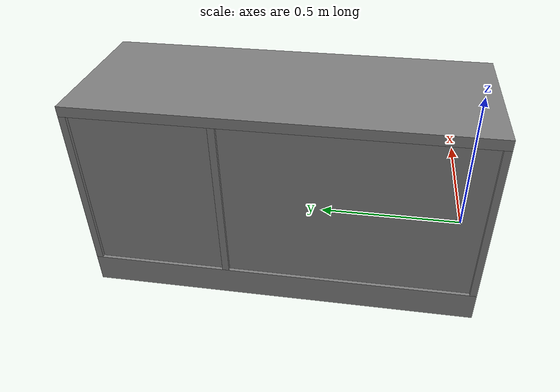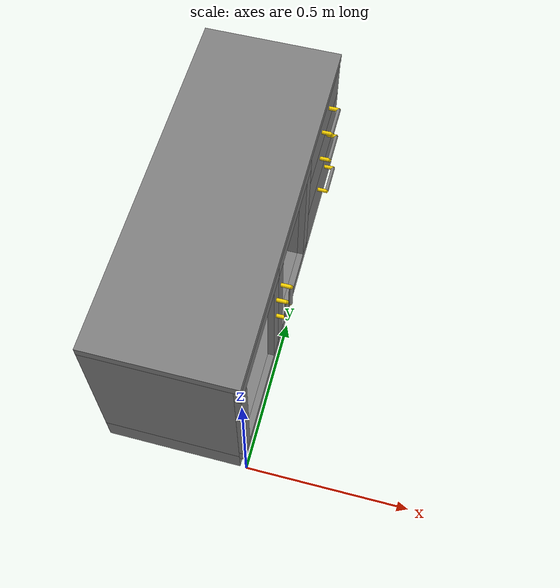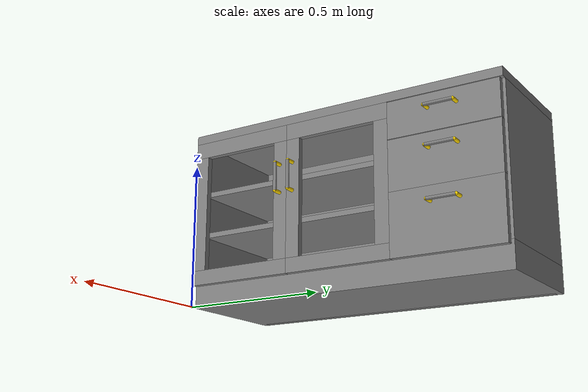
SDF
<?xml version="1.0" ?>
<sdf version="1.4">
    <model name='openable_living_sideboard'>
      <link name='body'>
        <pose>0.0 0.0 0.0 0 0 0</pose>
        <inertial>
          <mass>10.0</mass>
          <inertia>
            <ixx>1</ixx>
            <ixy>0</ixy>
            <ixz>0</ixz>
            <iyy>1</iyy>
            <iyz>0</iyz>
            <izz>1</izz>
          </inertia>
        </inertial>
        <visual name='left_board'>
          <pose>-0.23 0.01 0.3375 0 0 0</pose>
          <geometry>
            <box>
              <size>0.42 0.02 0.495</size>
            </box>
          </geometry>
          <material>
            <!-- base_materials/wood -->
            <name>wood</name>
            <ambient>1 1 1 1</ambient>
            <diffuse>0.5 0.5 0.5 1.0</diffuse>
            <specular>0 0 0 1.0</specular>
            <shininess>12.5</shininess>
            <pbr>
              <metal>
                <albedo_map>model://base_materials/wood/textures/light_wood.png</albedo_map>
                <max_anisotropy>16</max_anisotropy>
                <metalness>0</metalness>
              </metal>
            </pbr>
          </material>
        </visual>
        <collision name='collision_left_board'>
          <pose>-0.23 0.01 0.3375 0 0 0</pose>
          <geometry>
            <box>
              <size>0.42 0.02 0.495</size>
            </box>
          </geometry>
          <max_contacts>10</max_contacts>
          <surface>
            <bounce/>
            <friction>
              <ode/>
            </friction>
            <contact>
              <ode/>
            </contact>
          </surface>
        </collision>
        <visual name='back_board'>
          <pose>-0.42 0.575 0.2925 0 0 0</pose>
          <geometry>
            <box>
              <size>0.02 1.11 0.585</size>
            </box>
          </geometry>
          <material>
            <!-- base_materials/wood -->
            <name>wood</name>
            <ambient>1 1 1 1</ambient>
            <diffuse>0.5 0.5 0.5 1.0</diffuse>
            <specular>0 0 0 1.0</specular>
            <shininess>12.5</shininess>
            <pbr>
              <metal>
                <albedo_map>model://base_materials/wood/textures/light_wood.png</albedo_map>
                <max_anisotropy>16</max_anisotropy>
                <metalness>0</metalness>
              </metal>
            </pbr>
          </material>
        </visual>
        <collision name='collision_back_board'>
          <pose>-0.42 0.575 0.2925 0 0 0</pose>
          <geometry>
            <box>
              <size>0.02 1.11 0.585</size>
            </box>
          </geometry>
          <max_contacts>10</max_contacts>
          <surface>
            <bounce/>
            <friction>
              <ode/>
            </friction>
            <contact>
              <ode/>
            </contact>
          </surface>
        </collision>
        <visual name='right_board'>
          <pose>-0.23 1.14 0.3375 0 0 0</pose>
          <geometry>
            <box>
              <size>0.42 0.02 0.495</size>
            </box>
          </geometry>
          <material>
            <!-- base_materials/wood -->
            <name>wood</name>
            <ambient>1 1 1 1</ambient>
            <diffuse>0.5 0.5 0.5 1.0</diffuse>
            <specular>0 0 0 1.0</specular>
            <shininess>12.5</shininess>
            <pbr>
              <metal>
                <albedo_map>model://base_materials/wood/textures/light_wood.png</albedo_map>
                <max_anisotropy>16</max_anisotropy>
                <metalness>0</metalness>
              </metal>
            </pbr>
          </material>
        </visual>
        <collision name='collision_right_board'>
          <pose>-0.23 1.14 0.3375 0 0 0</pose>
          <geometry>
            <box>
              <size>0.42 0.02 0.495</size>
            </box>
          </geometry>
          <max_contacts>10</max_contacts>
          <surface>
            <bounce/>
            <friction>
              <ode/>
            </friction>
            <contact>
              <ode/>
            </contact>
          </surface>
        </collision>
        <visual name='center_vertical_board1'>
          <pose>-0.23 0.74 0.3375 0 0 0</pose>
          <geometry>
            <box>
              <size>0.42 0.02 0.495</size>
            </box>
          </geometry>
          <material>
            <!-- base_materials/wood -->
            <name>wood</name>
            <ambient>1 1 1 1</ambient>
            <diffuse>0.5 0.5 0.5 1.0</diffuse>
            <specular>0 0 0 1.0</specular>
            <shininess>12.5</shininess>
            <pbr>
              <metal>
                <albedo_map>model://base_materials/wood/textures/light_wood.png</albedo_map>
                <max_anisotropy>16</max_anisotropy>
                <metalness>0</metalness>
              </metal>
            </pbr>
          </material>
        </visual>
        <collision name='collision_center_vertical_board1'>
          <pose>-0.23 0.74 0.3375 0 0 0</pose>
          <geometry>
            <box>
              <size>0.42 0.02 0.495</size>
            </box>
          </geometry>
          <max_contacts>10</max_contacts>
          <surface>
            <bounce/>
            <friction>
              <ode/>
            </friction>
            <contact>
              <ode/>
            </contact>
          </surface>
        </collision>
        <visual name='top_board'>
          <pose>-0.22 0.575  0.6 0 0 0</pose>
          <geometry>
            <box>
              <size>0.44 1.15 0.03</size>
            </box>
          </geometry>
          <material>
            <!-- base_materials/wood -->
            <name>wood</name>
            <ambient>1 1 1 1</ambient>
            <diffuse>0.5 0.5 0.5 1.0</diffuse>
            <specular>0 0 0 1.0</specular>
            <shininess>12.5</shininess>
            <pbr>
              <metal>
                <albedo_map>model://base_materials/wood/textures/light_wood.png</albedo_map>
                <max_anisotropy>16</max_anisotropy>
                <metalness>0</metalness>
              </metal>
            </pbr>
          </material>
        </visual>
        <collision name='collision_top_board'>
          <pose>-0.22 0.575  0.6 0 0 0</pose>
          <geometry>
            <box>
              <size>0.44 1.15 0.03</size>
            </box>
          </geometry>
          <max_contacts>10</max_contacts>
          <surface>
            <bounce/>
            <friction>
              <ode/>
            </friction>
            <contact>
              <ode/>
            </contact>
          </surface>
        </collision>
        <visual name='bottom_board'>
          <pose>-0.23 0.575  0.045 0 0 0</pose>
          <geometry>
            <box>
              <size>0.42 1.15 0.09</size>
            </box>
          </geometry>
          <material>
            <!-- base_materials/wood -->
            <name>wood</name>
            <ambient>1 1 1 1</ambient>
            <diffuse>0.5 0.5 0.5 1.0</diffuse>
            <specular>0 0 0 1.0</specular>
            <shininess>12.5</shininess>
            <pbr>
              <metal>
                <albedo_map>model://base_materials/wood/textures/light_wood.png</albedo_map>
                <max_anisotropy>16</max_anisotropy>
                <metalness>0</metalness>
              </metal>
            </pbr>
          </material>
        </visual>
        <collision name='collision_bottom_board'>
          <pose>-0.23 0.575  0.045 0 0 0</pose>
          <geometry>
            <box>
              <size>0.42 1.15 0.09</size>
            </box>
          </geometry>
          <max_contacts>10</max_contacts>
          <surface>
            <bounce/>
            <friction>
              <ode/>
            </friction>
            <contact>
              <ode/>
            </contact>
          </surface>
        </collision>
        <visual name='1st_shelf'>
          <pose>-0.225 0.37 0.259 0 0 0</pose>
          <geometry>
            <box>
              <size>0.36 0.72 0.018</size>
            </box>
          </geometry>
          <material>
            <!-- base_materials/wood -->
            <name>wood</name>
            <ambient>1 1 1 1</ambient>
            <diffuse>0.5 0.5 0.5 1.0</diffuse>
            <specular>0 0 0 1.0</specular>
            <shininess>12.5</shininess>
            <pbr>
              <metal>
                <albedo_map>model://base_materials/wood/textures/light_wood.png</albedo_map>
                <max_anisotropy>16</max_anisotropy>
                <metalness>0</metalness>
              </metal>
            </pbr>
          </material>
        </visual>
        <collision name='collision_1st_shelf'>
          <pose>-0.225 0.37 0.259 0 0 0</pose>
          <geometry>
            <box>
              <size>0.36 0.72 0.018</size>
            </box>
          </geometry>
          <max_contacts>10</max_contacts>
          <surface>
            <bounce/>
            <friction>
              <ode/>
            </friction>
            <contact>
              <ode/>
            </contact>
          </surface>
        </collision>
        <visual name='2nd_shelf'>
          <pose>-0.225 0.37 0.407 0 0 0</pose>
          <geometry>
            <box>
              <size>0.36 0.72 0.018</size>
            </box>
          </geometry>
          <material>
            <!-- base_materials/wood -->
            <name>wood</name>
            <ambient>1 1 1 1</ambient>
            <diffuse>0.5 0.5 0.5 1.0</diffuse>
            <specular>0 0 0 1.0</specular>
            <shininess>12.5</shininess>
            <pbr>
              <metal>
                <albedo_map>model://base_materials/wood/textures/light_wood.png</albedo_map>
                <max_anisotropy>16</max_anisotropy>
                <metalness>0</metalness>
              </metal>
            </pbr>
          </material>
        </visual>
        <collision name='collision_2nd_shelf'>
          <pose>-0.225 0.37 0.407 0 0 0</pose>
          <geometry>
            <box>
              <size>0.36 0.72 0.018</size>
            </box>
          </geometry>
          <max_contacts>10</max_contacts>
          <surface>
            <bounce/>
            <friction>
              <ode/>
            </friction>
            <contact>
              <ode/>
            </contact>
          </surface>
        </collision>
        <visual name='2nd_drawer'>
          <pose>-0.2025 0.950 0.37 0 0 0</pose>
          <geometry>
            <box>
              <size>0.405 0.38 0.170</size>
            </box>
          </geometry>
          <material>
            <!-- base_materials/wood -->
            <name>wood</name>
            <ambient>1 1 1 1</ambient>
            <diffuse>0.5 0.5 0.5 1.0</diffuse>
            <specular>0 0 0 1.0</specular>
            <shininess>12.5</shininess>
            <pbr>
              <metal>
                <albedo_map>model://base_materials/wood/textures/light_wood.png</albedo_map>
                <max_anisotropy>16</max_anisotropy>
                <metalness>0</metalness>
              </metal>
            </pbr>
          </material>
        </visual>
        <collision name='collision_2nd_drawer'>
          <pose>-0.2025 0.950 0.37 0 0 0</pose>
          <geometry>
            <box>
              <size>0.405 0.38 0.170</size>
            </box>
          </geometry>
          <max_contacts>10</max_contacts>
          <surface>
            <bounce/>
            <friction>
              <ode/>
            </friction>
            <contact>
              <ode/>
            </contact>
          </surface>
        </collision>
        <visual name='2nd_drawer_handle_l1'>
          <pose>0.015 0.9015 0.405 0 1.5708 0</pose>
          <geometry>
            <cylinder>
              <radius>0.006</radius>
              <length>0.03</length>
            </cylinder>
          </geometry>
          <material>
            <!-- color:gold -->
            <ambient>1 0.84314 0 1</ambient>
            <diffuse>1 0.84314 0 1</diffuse>
            <specular>0.1 0.1 0.1 1</specular>
          </material>
        </visual>
        <collision name='collision_2nd_drawer_handle_l1'>
          <pose>0.015 0.9015 0.405 0 1.5708 0</pose>
          <geometry>
            <cylinder>
              <radius>0.006</radius>
              <length>0.03</length>
            </cylinder>
          </geometry>
          <max_contacts>10</max_contacts>
          <surface>
            <bounce/>
            <friction>
              <ode/>
            </friction>
            <contact>
              <ode/>
            </contact>
          </surface>
        </collision>
        <visual name='2nd_drawer_handle_l2'>
          <pose>0.03 0.9015 0.405 0 0 0</pose>
          <geometry>
            <sphere>
              <radius>0.006</radius>
            </sphere>
          </geometry>
          <material>
            <!-- color:gold -->
            <ambient>1 0.84314 0 1</ambient>
            <diffuse>1 0.84314 0 1</diffuse>
            <specular>0.1 0.1 0.1 1</specular>
          </material>
        </visual>
        <collision name='collision_2nd_drawer_handle_l2'>
          <pose>0.03 0.9015 0.405 0 0 0</pose>
          <geometry>
            <sphere>
              <radius>0.006</radius>
            </sphere>
          </geometry>
          <max_contacts>10</max_contacts>
          <surface>
            <bounce/>
            <friction>
              <ode/>
            </friction>
            <contact>
              <ode/>
            </contact>
          </surface>
        </collision>
        <visual name='2nd_drawer_handle_r1'>
          <pose>0.015 0.9985 0.405 0 1.5708 0</pose>
          <geometry>
            <cylinder>
              <radius>0.006</radius>
              <length>0.03</length>
            </cylinder>
          </geometry>
          <material>
            <!-- color:gold -->
            <ambient>1 0.84314 0 1</ambient>
            <diffuse>1 0.84314 0 1</diffuse>
            <specular>0.1 0.1 0.1 1</specular>
          </material>
        </visual>
        <collision name='collision_2nd_drawer_handle_r1'>
          <pose>0.015 0.9985 0.405 0 1.5708 0</pose>
          <geometry>
            <cylinder>
              <radius>0.006</radius>
              <length>0.03</length>
            </cylinder>
          </geometry>
          <max_contacts>10</max_contacts>
          <surface>
            <bounce/>
            <friction>
              <ode/>
            </friction>
            <contact>
              <ode/>
            </contact>
          </surface>
        </collision>
        <visual name='2nd_drawer_handle_r2'>
          <pose>0.03 0.9985 0.405 0 0 0</pose>
          <geometry>
            <sphere>
              <radius>0.006</radius>
            </sphere>
          </geometry>
          <material>
            <!-- color:gold -->
            <ambient>1 0.84314 0 1</ambient>
            <diffuse>1 0.84314 0 1</diffuse>
            <specular>0.1 0.1 0.1 1</specular>
          </material>
        </visual>
        <collision name='collision_2nd_drawer_handle_r2'>
          <pose>0.03 0.9985 0.405 0 0 0</pose>
          <geometry>
            <sphere>
              <radius>0.006</radius>
            </sphere>
          </geometry>
          <max_contacts>10</max_contacts>
          <surface>
            <bounce/>
            <friction>
              <ode/>
            </friction>
            <contact>
              <ode/>
            </contact>
          </surface>
        </collision>
        <visual name='2nd_drawer_handle_center'>
          <pose>0.03 0.950 0.405 1.5708 0 0</pose>
          <geometry>
            <cylinder>
              <radius>0.006</radius>
              <length>0.097</length>
            </cylinder>
          </geometry>
          <material>
            <!-- base_materials/wood -->
            <name>wood</name>
            <ambient>1 1 1 1</ambient>
            <diffuse>0.5 0.5 0.5 1.0</diffuse>
            <specular>0 0 0 1.0</specular>
            <shininess>12.5</shininess>
            <pbr>
              <metal>
                <albedo_map>model://base_materials/wood/textures/light_wood.png</albedo_map>
                <max_anisotropy>16</max_anisotropy>
                <metalness>0</metalness>
              </metal>
            </pbr>
          </material>
        </visual>
        <collision name='collision_2nd_drawer_handle_center'>
          <pose>0.03 0.950 0.405 1.5708 0 0</pose>
          <geometry>
            <cylinder>
              <radius>0.006</radius>
              <length>0.097</length>
            </cylinder>
          </geometry>
          <max_contacts>10</max_contacts>
          <surface>
            <bounce/>
            <friction>
              <ode/>
            </friction>
            <contact>
              <ode/>
            </contact>
          </surface>
        </collision>
        <visual name='3rd_drawer'>
          <pose>-0.2025 0.950 0.18 0 0 0</pose>
          <geometry>
            <box>
              <size>0.405 0.38 0.21</size>
            </box>
          </geometry>
          <material>
            <!-- base_materials/wood -->
            <name>wood</name>
            <ambient>1 1 1 1</ambient>
            <diffuse>0.5 0.5 0.5 1.0</diffuse>
            <specular>0 0 0 1.0</specular>
            <shininess>12.5</shininess>
            <pbr>
              <metal>
                <albedo_map>model://base_materials/wood/textures/light_wood.png</albedo_map>
                <max_anisotropy>16</max_anisotropy>
                <metalness>0</metalness>
              </metal>
            </pbr>
          </material>
        </visual>
        <collision name='collision_3rd_drawer'>
          <pose>-0.2025 0.950 0.18 0 0 0</pose>
          <geometry>
            <box>
              <size>0.405 0.38 0.21</size>
            </box>
          </geometry>
          <max_contacts>10</max_contacts>
          <surface>
            <bounce/>
            <friction>
              <ode/>
            </friction>
            <contact>
              <ode/>
            </contact>
          </surface>
        </collision>
        <visual name='3rd_drawer_handle_l1'>
          <pose>0.015 0.9015 0.235 0 1.5708 0</pose>
          <geometry>
            <cylinder>
              <radius>0.006</radius>
              <length>0.03</length>
            </cylinder>
          </geometry>
          <material>
            <!-- color:gold -->
            <ambient>1 0.84314 0 1</ambient>
            <diffuse>1 0.84314 0 1</diffuse>
            <specular>0.1 0.1 0.1 1</specular>
          </material>
        </visual>
        <collision name='collision_3rd_drawer_handle_l1'>
          <pose>0.015 0.9015 0.235 0 1.5708 0</pose>
          <geometry>
            <cylinder>
              <radius>0.006</radius>
              <length>0.03</length>
            </cylinder>
          </geometry>
          <max_contacts>10</max_contacts>
          <surface>
            <bounce/>
            <friction>
              <ode/>
            </friction>
            <contact>
              <ode/>
            </contact>
          </surface>
        </collision>
        <visual name='3rd_drawer_handle_l2'>
          <pose>0.03 0.9015 0.235 0 0 0</pose>
          <geometry>
            <sphere>
              <radius>0.006</radius>
            </sphere>
          </geometry>
          <material>
            <!-- color:gold -->
            <ambient>1 0.84314 0 1</ambient>
            <diffuse>1 0.84314 0 1</diffuse>
            <specular>0.1 0.1 0.1 1</specular>
          </material>
        </visual>
        <collision name='collision_3rd_drawer_handle_l2'>
          <pose>0.03 0.9015 0.235 0 0 0</pose>
          <geometry>
            <sphere>
              <radius>0.006</radius>
            </sphere>
          </geometry>
          <max_contacts>10</max_contacts>
          <surface>
            <bounce/>
            <friction>
              <ode/>
            </friction>
            <contact>
              <ode/>
            </contact>
          </surface>
        </collision>
        <visual name='3rd_drawer_handle_r1'>
          <pose>0.015 0.9985 0.235 0 1.5708 0</pose>
          <geometry>
            <cylinder>
              <radius>0.006</radius>
              <length>0.03</length>
            </cylinder>
          </geometry>
          <material>
            <!-- color:gold -->
            <ambient>1 0.84314 0 1</ambient>
            <diffuse>1 0.84314 0 1</diffuse>
            <specular>0.1 0.1 0.1 1</specular>
          </material>
        </visual>
        <collision name='collision_3rd_drawer_handle_r1'>
          <pose>0.015 0.9985 0.235 0 1.5708 0</pose>
          <geometry>
            <cylinder>
              <radius>0.006</radius>
              <length>0.03</length>
            </cylinder>
          </geometry>
          <max_contacts>10</max_contacts>
          <surface>
            <bounce/>
            <friction>
              <ode/>
            </friction>
            <contact>
              <ode/>
            </contact>
          </surface>
        </collision>
        <visual name='3rd_drawer_handle_r2'>
          <pose>0.03 0.9985 0.235 0 0 0</pose>
          <geometry>
            <sphere>
              <radius>0.006</radius>
            </sphere>
          </geometry>
          <material>
            <!-- color:gold -->
            <ambient>1 0.84314 0 1</ambient>
            <diffuse>1 0.84314 0 1</diffuse>
            <specular>0.1 0.1 0.1 1</specular>
          </material>
        </visual>
        <collision name='collision_3rd_drawer_handle_r2'>
          <pose>0.03 0.9985 0.235 0 0 0</pose>
          <geometry>
            <sphere>
              <radius>0.006</radius>
            </sphere>
          </geometry>
          <max_contacts>10</max_contacts>
          <surface>
            <bounce/>
            <friction>
              <ode/>
            </friction>
            <contact>
              <ode/>
            </contact>
          </surface>
        </collision>
        <visual name='3rd_drawer_handle_center'>
          <pose>0.03 0.950 0.235 1.5708 0 0</pose>
          <geometry>
            <cylinder>
              <radius>0.006</radius>
              <length>0.097</length>
            </cylinder>
          </geometry>
          <material>
            <!-- base_materials/wood -->
            <name>wood</name>
            <ambient>1 1 1 1</ambient>
            <diffuse>0.5 0.5 0.5 1.0</diffuse>
            <specular>0 0 0 1.0</specular>
            <shininess>12.5</shininess>
            <pbr>
              <metal>
                <albedo_map>model://base_materials/wood/textures/light_wood.png</albedo_map>
                <max_anisotropy>16</max_anisotropy>
                <metalness>0</metalness>
              </metal>
            </pbr>
          </material>
        </visual>
        <collision name='collision_3rd_drawer_handle_center'>
          <pose>0.03 0.950 0.235 1.5708 0 0</pose>
          <geometry>
            <cylinder>
              <radius>0.006</radius>
              <length>0.097</length>
            </cylinder>
          </geometry>
          <max_contacts>10</max_contacts>
          <surface>
            <bounce/>
            <friction>
              <ode/>
            </friction>
            <contact>
              <ode/>
            </contact>
          </surface>
        </collision>
      </link>

      <link name='right_door'>
        <visual name='right_door_left_frame'>
          <pose>-0.01 0.405 0.3275 0 0 0</pose>
          <geometry>
            <box>
              <size>0.02 0.05 0.405</size>
            </box>
          </geometry>
          <material>
            <!-- base_materials/wood -->
            <name>wood</name>
            <ambient>1 1 1 1</ambient>
            <diffuse>0.5 0.5 0.5 1.0</diffuse>
            <specular>0 0 0 1.0</specular>
            <shininess>12.5</shininess>
            <pbr>
              <metal>
                <albedo_map>model://base_materials/wood/textures/light_wood.png</albedo_map>
                <max_anisotropy>16</max_anisotropy>
                <metalness>0</metalness>
              </metal>
            </pbr>
          </material>
        </visual>
        <collision name='collision_right_door_left_frame'>
          <pose>-0.01 0.405 0.3275 0 0 0</pose>
          <geometry>
            <box>
              <size>0.02 0.05 0.405</size>
            </box>
          </geometry>
          <max_contacts>10</max_contacts>
          <surface>
            <bounce/>
            <friction>
              <ode/>
            </friction>
            <contact>
              <ode/>
            </contact>
          </surface>
        </collision>
        <visual name='right_door_right_frame'>
          <pose>-0.01 0.735 0.3275 0 0 0</pose>
          <geometry>
            <box>
              <size>0.02 0.05 0.405</size>
            </box>
          </geometry>
          <material>
            <!-- base_materials/wood -->
            <name>wood</name>
            <ambient>1 1 1 1</ambient>
            <diffuse>0.5 0.5 0.5 1.0</diffuse>
            <specular>0 0 0 1.0</specular>
            <shininess>12.5</shininess>
            <pbr>
              <metal>
                <albedo_map>model://base_materials/wood/textures/light_wood.png</albedo_map>
                <max_anisotropy>16</max_anisotropy>
                <metalness>0</metalness>
              </metal>
            </pbr>
          </material>
        </visual>
        <collision name='collision_right_door_right_frame'>
          <pose>-0.01 0.735 0.3275 0 0 0</pose>
          <geometry>
            <box>
              <size>0.02 0.05 0.405</size>
            </box>
          </geometry>
          <max_contacts>10</max_contacts>
          <surface>
            <bounce/>
            <friction>
              <ode/>
            </friction>
            <contact>
              <ode/>
            </contact>
          </surface>
        </collision>
        <visual name='right_door_top_frame'>
          <pose>-0.01 0.57 0.5575 0 0 0</pose>
          <geometry>
            <box>
              <size>0.02 0.38 0.055</size>
            </box>
          </geometry>
          <material>
            <!-- base_materials/wood -->
            <name>wood</name>
            <ambient>1 1 1 1</ambient>
            <diffuse>0.5 0.5 0.5 1.0</diffuse>
            <specular>0 0 0 1.0</specular>
            <shininess>12.5</shininess>
            <pbr>
              <metal>
                <albedo_map>model://base_materials/wood/textures/light_wood.png</albedo_map>
                <max_anisotropy>16</max_anisotropy>
                <metalness>0</metalness>
              </metal>
            </pbr>
          </material>
        </visual>
        <collision name='collision_right_door_top_frame'>
          <pose>-0.01 0.57 0.5575 0 0 0</pose>
          <geometry>
            <box>
              <size>0.02 0.38 0.055</size>
            </box>
          </geometry>
          <max_contacts>10</max_contacts>
          <surface>
            <bounce/>
            <friction>
              <ode/>
            </friction>
            <contact>
              <ode/>
            </contact>
          </surface>
        </collision>
        <visual name='right_door_bottom_frame'>
          <pose>-0.01 0.57 0.1 0 0 0</pose>
          <geometry>
            <box>
              <size>0.02 0.38 0.05</size>
            </box>
          </geometry>
          <material>
            <!-- base_materials/wood -->
            <name>wood</name>
            <ambient>1 1 1 1</ambient>
            <diffuse>0.5 0.5 0.5 1.0</diffuse>
            <specular>0 0 0 1.0</specular>
            <shininess>12.5</shininess>
            <pbr>
              <metal>
                <albedo_map>model://base_materials/wood/textures/light_wood.png</albedo_map>
                <max_anisotropy>16</max_anisotropy>
                <metalness>0</metalness>
              </metal>
            </pbr>
          </material>
        </visual>
        <collision name='collision_right_door_bottom_frame'>
          <pose>-0.01 0.57 0.1 0 0 0</pose>
          <geometry>
            <box>
              <size>0.02 0.38 0.05</size>
            </box>
          </geometry>
          <max_contacts>10</max_contacts>
          <surface>
            <bounce/>
            <friction>
              <ode/>
            </friction>
            <contact>
              <ode/>
            </contact>
          </surface>
        </collision>
        <visual name='right_door_handle_top1'>
          <pose>0.015 0.405 0.4475 0 1.5708 0</pose>
          <geometry>
            <cylinder>
              <radius>0.006</radius>
              <length>0.03</length>
            </cylinder>
          </geometry>
          <material>
            <!-- color:gold -->
            <ambient>1 0.84314 0 1</ambient>
            <diffuse>1 0.84314 0 1</diffuse>
            <specular>0.1 0.1 0.1 1</specular>
          </material>
        </visual>
        <collision name='collision_right_door_handle_top1'>
          <pose>0.015 0.405 0.4475 0 1.5708 0</pose>
          <geometry>
            <cylinder>
              <radius>0.006</radius>
              <length>0.03</length>
            </cylinder>
          </geometry>
          <max_contacts>10</max_contacts>
          <surface>
            <bounce/>
            <friction>
              <ode/>
            </friction>
            <contact>
              <ode/>
            </contact>
          </surface>
        </collision>
        <visual name='right_door_handle_top2'>
          <pose>0.03 0.405 0.4475 0 0 0</pose>
          <geometry>
            <sphere>
              <radius>0.006</radius>
            </sphere>
          </geometry>
          <material>
            <!-- color:gold -->
            <ambient>1 0.84314 0 1</ambient>
            <diffuse>1 0.84314 0 1</diffuse>
            <specular>0.1 0.1 0.1 1</specular>
          </material>
        </visual>
        <collision name='collision_right_door_handle_top2'>
          <pose>0.03 0.405 0.4475 0 0 0</pose>
          <geometry>
            <sphere>
              <radius>0.006</radius>
            </sphere>
          </geometry>
          <max_contacts>10</max_contacts>
          <surface>
            <bounce/>
            <friction>
              <ode/>
            </friction>
            <contact>
              <ode/>
            </contact>
          </surface>
        </collision>
        <visual name='right_door_handle_bottom1'>
          <pose>0.015 0.405 0.3505 0 1.5708 0</pose>
          <geometry>
            <cylinder>
              <radius>0.006</radius>
              <length>0.03</length>
            </cylinder>
          </geometry>
          <material>
            <!-- color:gold -->
            <ambient>1 0.84314 0 1</ambient>
            <diffuse>1 0.84314 0 1</diffuse>
            <specular>0.1 0.1 0.1 1</specular>
          </material>
        </visual>
        <collision name='collision_right_door_handle_bottom1'>
          <pose>0.015 0.405 0.3505 0 1.5708 0</pose>
          <geometry>
            <cylinder>
              <radius>0.006</radius>
              <length>0.03</length>
            </cylinder>
          </geometry>
          <max_contacts>10</max_contacts>
          <surface>
            <bounce/>
            <friction>
              <ode/>
            </friction>
            <contact>
              <ode/>
            </contact>
          </surface>
        </collision>
        <visual name='right_door_handle_bottom2'>
          <pose>0.03 0.405 0.3505 0 0 0</pose>
          <geometry>
            <sphere>
              <radius>0.006</radius>
            </sphere>
          </geometry>
          <material>
            <!-- color:gold -->
            <ambient>1 0.84314 0 1</ambient>
            <diffuse>1 0.84314 0 1</diffuse>
            <specular>0.1 0.1 0.1 1</specular>
          </material>
        </visual>
        <collision name='collision_right_door_handle_bottom2'>
          <pose>0.03 0.405 0.3505 0 0 0</pose>
          <geometry>
            <sphere>
              <radius>0.006</radius>
            </sphere>
          </geometry>
          <max_contacts>10</max_contacts>
          <surface>
            <bounce/>
            <friction>
              <ode/>
            </friction>
            <contact>
              <ode/>
            </contact>
          </surface>
        </collision>
        <visual name='right_door_handle_center'>
          <pose>0.03 0.405 0.3990 0 0 0</pose>
          <geometry>
            <cylinder>
              <radius>0.006</radius>
              <length>0.097</length>
            </cylinder>
          </geometry>
          <material>
            <!-- base_materials/wood -->
            <name>wood</name>
            <ambient>1 1 1 1</ambient>
            <diffuse>0.5 0.5 0.5 1.0</diffuse>
            <specular>0 0 0 1.0</specular>
            <shininess>12.5</shininess>
            <pbr>
              <metal>
                <albedo_map>model://base_materials/wood/textures/light_wood.png</albedo_map>
                <max_anisotropy>16</max_anisotropy>
                <metalness>0</metalness>
              </metal>
            </pbr>
          </material>
        </visual>
        <collision name='collision_right_door_handle_center'>
          <pose>0.03 0.400 0.3990 0 0 0</pose>
          <geometry>
            <cylinder>
              <radius>0.006</radius>
              <length>0.097</length>
            </cylinder>
          </geometry>
          <max_contacts>10</max_contacts>
          <surface>
            <bounce/>
            <friction>
              <ode/>
            </friction>
            <contact>
              <ode/>
            </contact>
          </surface>
        </collision>
        <velocity_decay>
          <linear>0</linear>
          <angular>0</angular>
        </velocity_decay>
        <self_collide>0</self_collide>
        <kinematic>0</kinematic>
        <gravity>1</gravity>
      </link>

      <link name='left_door'>
        <visual name='left_door_left_frame'>
          <pose>-0.01 0.025 0.3275 0 0 0</pose>
          <geometry>
            <box>
              <size>0.02 0.05 0.405</size>
            </box>
          </geometry>
          <material>
            <!-- base_materials/wood -->
            <name>wood</name>
            <ambient>1 1 1 1</ambient>
            <diffuse>0.5 0.5 0.5 1.0</diffuse>
            <specular>0 0 0 1.0</specular>
            <shininess>12.5</shininess>
            <pbr>
              <metal>
                <albedo_map>model://base_materials/wood/textures/light_wood.png</albedo_map>
                <max_anisotropy>16</max_anisotropy>
                <metalness>0</metalness>
              </metal>
            </pbr>
          </material>
        </visual>
        <collision name='collision_left_door_left_frame'>
          <pose>-0.01 0.025 0.3275 0 0 0</pose>
          <geometry>
            <box>
              <size>0.02 0.05 0.405</size>
            </box>
          </geometry>
          <max_contacts>10</max_contacts>
          <surface>
            <bounce/>
            <friction>
              <ode/>
            </friction>
            <contact>
              <ode/>
            </contact>
          </surface>
        </collision>
        <visual name='left_door_right_frame'>
          <pose>-0.01 0.355 0.3275 0 0 0</pose>
          <geometry>
            <box>
              <size>0.02 0.05 0.405</size>
            </box>
          </geometry>
          <material>
            <!-- base_materials/wood -->
            <name>wood</name>
            <ambient>1 1 1 1</ambient>
            <diffuse>0.5 0.5 0.5 1.0</diffuse>
            <specular>0 0 0 1.0</specular>
            <shininess>12.5</shininess>
            <pbr>
              <metal>
                <albedo_map>model://base_materials/wood/textures/light_wood.png</albedo_map>
                <max_anisotropy>16</max_anisotropy>
                <metalness>0</metalness>
              </metal>
            </pbr>
          </material>
        </visual>
        <collision name='collision_left_door_right_frame'>
          <pose>-0.01 0.355 0.3275 0 0 0</pose>
          <geometry>
            <box>
              <size>0.02 0.05 0.405</size>
            </box>
          </geometry>
          <max_contacts>10</max_contacts>
          <surface>
            <bounce/>
            <friction>
              <ode/>
            </friction>
            <contact>
              <ode/>
            </contact>
          </surface>
        </collision>
        <visual name='left_door_handle_top1'>
          <pose>0.015 0.355 0.4475 0 1.5708 0</pose>
          <geometry>
            <cylinder>
              <radius>0.006</radius>
              <length>0.03</length>
            </cylinder>
          </geometry>
          <material>
            <!-- color:gold -->
            <ambient>1 0.84314 0 1</ambient>
            <diffuse>1 0.84314 0 1</diffuse>
            <specular>0.1 0.1 0.1 1</specular>
          </material>
        </visual>
        <collision name='collision_left_door_handle_top1'>
          <pose>0.015 0.355 0.4475 0 1.5708 0</pose>
          <geometry>
            <cylinder>
              <radius>0.006</radius>
              <length>0.03</length>
            </cylinder>
          </geometry>
          <max_contacts>10</max_contacts>
          <surface>
            <bounce/>
            <friction>
              <ode/>
            </friction>
            <contact>
              <ode/>
            </contact>
          </surface>
        </collision>
        <visual name='left_door_handle_top2'>
          <pose>0.03 0.355 0.4475 0 0 0</pose>
          <geometry>
            <sphere>
              <radius>0.006</radius>
            </sphere>
          </geometry>
          <material>
            <!-- color:gold -->
            <ambient>1 0.84314 0 1</ambient>
            <diffuse>1 0.84314 0 1</diffuse>
            <specular>0.1 0.1 0.1 1</specular>
          </material>
        </visual>
        <collision name='collision_left_door_handle_top2'>
          <pose>0.03 0.355 0.4475 0 0 0</pose>
          <geometry>
            <sphere>
              <radius>0.006</radius>
            </sphere>
          </geometry>
          <max_contacts>10</max_contacts>
          <surface>
            <bounce/>
            <friction>
              <ode/>
            </friction>
            <contact>
              <ode/>
            </contact>
          </surface>
        </collision>
        <visual name='left_door_handle_bottom1'>
          <pose>0.015 0.355 0.3505 0 1.5708 0</pose>
          <geometry>
            <cylinder>
              <radius>0.006</radius>
              <length>0.03</length>
            </cylinder>
          </geometry>
          <material>
            <!-- color:gold -->
            <ambient>1 0.84314 0 1</ambient>
            <diffuse>1 0.84314 0 1</diffuse>
            <specular>0.1 0.1 0.1 1</specular>
          </material>
        </visual>
        <collision name='collision_left_door_handle_bottom1'>
          <pose>0.015 0.355 0.3505 0 1.5708 0</pose>
          <geometry>
            <cylinder>
              <radius>0.006</radius>
              <length>0.03</length>
            </cylinder>
          </geometry>
          <max_contacts>10</max_contacts>
          <surface>
            <bounce/>
            <friction>
              <ode/>
            </friction>
            <contact>
              <ode/>
            </contact>
          </surface>
        </collision>
        <visual name='left_door_handle_bottom2'>
          <pose>0.03 0.355 0.3505 0 0 0</pose>
          <geometry>
            <sphere>
              <radius>0.006</radius>
            </sphere>
          </geometry>
          <material>
            <!-- color:gold -->
            <ambient>1 0.84314 0 1</ambient>
            <diffuse>1 0.84314 0 1</diffuse>
            <specular>0.1 0.1 0.1 1</specular>
          </material>
        </visual>
        <collision name='collision_left_door_handle_bottom2'>
          <pose>0.03 0.355 0.3505 0 0 0</pose>
          <geometry>
            <sphere>
              <radius>0.006</radius>
            </sphere>
          </geometry>
          <max_contacts>10</max_contacts>
          <surface>
            <bounce/>
            <friction>
              <ode/>
            </friction>
            <contact>
              <ode/>
            </contact>
          </surface>
        </collision>
        <visual name='left_door_handle_center'>
          <pose>0.03 0.355 0.3990 0 0 0</pose>
          <geometry>
            <cylinder>
              <radius>0.006</radius>
              <length>0.097</length>
            </cylinder>
          </geometry>
          <material>
            <!-- base_materials/wood -->
            <name>wood</name>
            <ambient>1 1 1 1</ambient>
            <diffuse>0.5 0.5 0.5 1.0</diffuse>
            <specular>0 0 0 1.0</specular>
            <shininess>12.5</shininess>
            <pbr>
              <metal>
                <albedo_map>model://base_materials/wood/textures/light_wood.png</albedo_map>
                <max_anisotropy>16</max_anisotropy>
                <metalness>0</metalness>
              </metal>
            </pbr>
          </material>
        </visual>
        <collision name='collision_left_door_handle_center'>
          <pose>0.03 0.355 0.3990 0 0 0</pose>
          <geometry>
            <cylinder>
              <radius>0.006</radius>
              <length>0.097</length>
            </cylinder>
          </geometry>
          <max_contacts>10</max_contacts>
          <surface>
            <bounce/>
            <friction>
              <ode/>
            </friction>
            <contact>
              <ode/>
            </contact>
          </surface>
        </collision>
        <visual name='left_door_top_frame'>
          <pose>-0.01 0.19 0.5575 0 0 0</pose>
          <geometry>
            <box>
              <size>0.02 0.38 0.055</size>
            </box>
          </geometry>
          <material>
            <!-- base_materials/wood -->
            <name>wood</name>
            <ambient>1 1 1 1</ambient>
            <diffuse>0.5 0.5 0.5 1.0</diffuse>
            <specular>0 0 0 1.0</specular>
            <shininess>12.5</shininess>
            <pbr>
              <metal>
                <albedo_map>model://base_materials/wood/textures/light_wood.png</albedo_map>
                <max_anisotropy>16</max_anisotropy>
                <metalness>0</metalness>
              </metal>
            </pbr>
          </material>
        </visual>
        <collision name='collision_left_door_top_frame'>
          <pose>-0.01 0.19 0.5575 0 0 0</pose>
          <geometry>
            <box>
              <size>0.02 0.38 0.055</size>
            </box>
          </geometry>
          <max_contacts>10</max_contacts>
          <surface>
            <bounce/>
            <friction>
              <ode/>
            </friction>
            <contact>
              <ode/>
            </contact>
          </surface>
        </collision>
        <visual name='left_door_bottom_frame'>
          <pose>-0.01 0.19 0.1 0 0 0</pose>
          <geometry>
            <box>
              <size>0.02 0.38 0.05</size>
            </box>
          </geometry>
          <material>
            <!-- base_materials/wood -->
            <name>wood</name>
            <ambient>1 1 1 1</ambient>
            <diffuse>0.5 0.5 0.5 1.0</diffuse>
            <specular>0 0 0 1.0</specular>
            <shininess>12.5</shininess>
            <pbr>
              <metal>
                <albedo_map>model://base_materials/wood/textures/light_wood.png</albedo_map>
                <max_anisotropy>16</max_anisotropy>
                <metalness>0</metalness>
              </metal>
            </pbr>
          </material>
        </visual>
        <collision name='collision_left_door_bottom_frame'>
          <pose>-0.01 0.19 0.1 0 0 0</pose>
          <geometry>
            <box>
              <size>0.02 0.38 0.05</size>
            </box>
          </geometry>
          <max_contacts>10</max_contacts>
          <surface>
            <bounce/>
            <friction>
              <ode/>
            </friction>
            <contact>
              <ode/>
            </contact>
          </surface>
        </collision>
      </link>

      <link name='1st_drawer'>
        <visual name='1st_drawer_bottom'>
          <pose>-0.2025 0.945 0.48 0 0 0</pose>
          <geometry>
            <box>
              <size>0.38 0.35 0.02</size>
            </box>
          </geometry>
          <material>
            <!-- base_materials/wood -->
            <name>wood</name>
            <ambient>1 1 1 1</ambient>
            <diffuse>0.5 0.5 0.5 1.0</diffuse>
            <specular>0 0 0 1.0</specular>
            <shininess>12.5</shininess>
            <pbr>
              <metal>
                <albedo_map>model://base_materials/wood/textures/light_wood.png</albedo_map>
                <max_anisotropy>16</max_anisotropy>
                <metalness>0</metalness>
              </metal>
            </pbr>
          </material>
        </visual>
        <collision name='collision_1st_drawer_bottom'>
          <pose>-0.2025 0.945 0.48 0 0 0</pose>
          <geometry>
            <box>
              <size>0.38 0.35 0.02</size>
            </box>
          </geometry>
          <max_contacts>10</max_contacts>
          <surface>
            <bounce/>
            <friction>
              <ode/>
            </friction>
            <contact>
              <ode/>
            </contact>
          </surface>
        </collision>
        <visual name='1st_drawer_left'>
          <pose>-0.2025 0.775 0.510 0 0 0</pose>
          <geometry>
            <box>
              <size>0.400 0.02 0.10</size>
            </box>
          </geometry>
          <material>
            <!-- base_materials/wood -->
            <name>wood</name>
            <ambient>1 1 1 1</ambient>
            <diffuse>0.5 0.5 0.5 1.0</diffuse>
            <specular>0 0 0 1.0</specular>
            <shininess>12.5</shininess>
            <pbr>
              <metal>
                <albedo_map>model://base_materials/wood/textures/light_wood.png</albedo_map>
                <max_anisotropy>16</max_anisotropy>
                <metalness>0</metalness>
              </metal>
            </pbr>
          </material>
        </visual>
        <collision name='collision_1st_drawer_left'>
          <pose>-0.2025 0.775 0.510 0 0 0</pose>
          <geometry>
            <box>
              <size>0.400 0.02 0.10</size>
            </box>
          </geometry>
          <max_contacts>10</max_contacts>
          <surface>
            <bounce/>
            <friction>
              <ode/>
            </friction>
            <contact>
              <ode/>
            </contact>
          </surface>
        </collision>
        <visual name='1st_drawer_right'>
          <pose>-0.2025 1.12 0.510 0 0 0</pose>
          <geometry>
            <box>
              <size>0.400 0.02 0.10</size>
            </box>
          </geometry>
          <material>
            <!-- base_materials/wood -->
            <name>wood</name>
            <ambient>1 1 1 1</ambient>
            <diffuse>0.5 0.5 0.5 1.0</diffuse>
            <specular>0 0 0 1.0</specular>
            <shininess>12.5</shininess>
            <pbr>
              <metal>
                <albedo_map>model://base_materials/wood/textures/light_wood.png</albedo_map>
                <max_anisotropy>16</max_anisotropy>
                <metalness>0</metalness>
              </metal>
            </pbr>
          </material>
        </visual>
        <collision name='collision_1st_drawer_right'>
          <pose>-0.2025 1.12 0.510 0 0 0</pose>
          <geometry>
            <box>
              <size>0.400 0.02 0.10</size>
            </box>
          </geometry>
          <max_contacts>10</max_contacts>
          <surface>
            <bounce/>
            <friction>
              <ode/>
            </friction>
            <contact>
              <ode/>
            </contact>
          </surface>
        </collision>
        <visual name='1st_drawer_front'>
          <pose>-0.01 0.950 0.520 0 0 0</pose>
          <geometry>
            <box>
              <size>0.02 0.38 0.125</size>
            </box>
          </geometry>
          <material>
            <!-- base_materials/wood -->
            <name>wood</name>
            <ambient>1 1 1 1</ambient>
            <diffuse>0.5 0.5 0.5 1.0</diffuse>
            <specular>0 0 0 1.0</specular>
            <shininess>12.5</shininess>
            <pbr>
              <metal>
                <albedo_map>model://base_materials/wood/textures/light_wood.png</albedo_map>
                <max_anisotropy>16</max_anisotropy>
                <metalness>0</metalness>
              </metal>
            </pbr>
          </material>
        </visual>
        <collision name='collision_1st_drawer_front'>
          <pose>-0.01 0.950 0.520 0 0 0</pose>
          <geometry>
            <box>
              <size>0.02 0.38 0.125</size>
            </box>
          </geometry>
          <max_contacts>10</max_contacts>
          <surface>
            <bounce/>
            <friction>
              <ode/>
            </friction>
            <contact>
              <ode/>
            </contact>
          </surface>
        </collision>
        <visual name='1st_drawer_back'>
          <pose>-0.40 0.950 0.510 0 0 0</pose>
          <geometry>
            <box>
              <size>0.02 0.36 0.095</size>
            </box>
          </geometry>
          <material>
            <!-- base_materials/wood -->
            <name>wood</name>
            <ambient>1 1 1 1</ambient>
            <diffuse>0.5 0.5 0.5 1.0</diffuse>
            <specular>0 0 0 1.0</specular>
            <shininess>12.5</shininess>
            <pbr>
              <metal>
                <albedo_map>model://base_materials/wood/textures/light_wood.png</albedo_map>
                <max_anisotropy>16</max_anisotropy>
                <metalness>0</metalness>
              </metal>
            </pbr>
          </material>
        </visual>
        <collision name='collision_1st_drawer_back'>
          <pose>-0.40 0.950 0.510 0 0 0</pose>
          <geometry>
            <box>
              <size>0.02 0.36 0.095</size>
            </box>
          </geometry>
          <max_contacts>10</max_contacts>
          <surface>
            <bounce/>
            <friction>
              <ode/>
            </friction>
            <contact>
              <ode/>
            </contact>
          </surface>
        </collision>
        <visual name='1st_drawer_handle_l1'>
          <pose>0.015 0.9015 0.535 0 1.5708 0</pose>
          <geometry>
            <cylinder>
              <radius>0.006</radius>
              <length>0.03</length>
            </cylinder>
          </geometry>
          <material>
            <!-- color:gold -->
            <ambient>1 0.84314 0 1</ambient>
            <diffuse>1 0.84314 0 1</diffuse>
            <specular>0.1 0.1 0.1 1</specular>
          </material>
        </visual>
        <collision name='collision_1st_drawer_handle_l1'>
          <pose>0.015 0.9015 0.535 0 1.5708 0</pose>
          <geometry>
            <cylinder>
              <radius>0.006</radius>
              <length>0.03</length>
            </cylinder>
          </geometry>
          <max_contacts>10</max_contacts>
          <surface>
            <bounce/>
            <friction>
              <ode/>
            </friction>
            <contact>
              <ode/>
            </contact>
          </surface>
        </collision>
        <visual name='1st_drawer_handle_l2'>
          <pose>0.03 0.9015 0.535 0 0 0</pose>
          <geometry>
            <sphere>
              <radius>0.006</radius>
            </sphere>
          </geometry>
          <material>
            <!-- color:gold -->
            <ambient>1 0.84314 0 1</ambient>
            <diffuse>1 0.84314 0 1</diffuse>
            <specular>0.1 0.1 0.1 1</specular>
          </material>
        </visual>
        <collision name='collision_1st_drawer_handle_l2'>
          <pose>0.03 0.9015 0.535 0 0 0</pose>
          <geometry>
            <sphere>
              <radius>0.006</radius>
            </sphere>
          </geometry>
          <max_contacts>10</max_contacts>
          <surface>
            <bounce/>
            <friction>
              <ode/>
            </friction>
            <contact>
              <ode/>
            </contact>
          </surface>
        </collision>
        <visual name='1st_drawer_handle_r1'>
          <pose>0.015 0.9985 0.535 0 1.5708 0</pose>
          <geometry>
            <cylinder>
              <radius>0.006</radius>
              <length>0.03</length>
            </cylinder>
          </geometry>
          <material>
            <!-- color:gold -->
            <ambient>1 0.84314 0 1</ambient>
            <diffuse>1 0.84314 0 1</diffuse>
            <specular>0.1 0.1 0.1 1</specular>
          </material>
        </visual>
        <collision name='collision_1st_drawer_handle_r1'>
          <pose>0.015 0.9985 0.535 0 1.5708 0</pose>
          <geometry>
            <cylinder>
              <radius>0.006</radius>
              <length>0.03</length>
            </cylinder>
          </geometry>
          <max_contacts>10</max_contacts>
          <surface>
            <bounce/>
            <friction>
              <ode/>
            </friction>
            <contact>
              <ode/>
            </contact>
          </surface>
        </collision>
        <visual name='1st_drawer_handle_r2'>
          <pose>0.03 0.9985 0.535 0 0 0</pose>
          <geometry>
            <sphere>
              <radius>0.006</radius>
            </sphere>
          </geometry>
          <material>
            <!-- color:gold -->
            <ambient>1 0.84314 0 1</ambient>
            <diffuse>1 0.84314 0 1</diffuse>
            <specular>0.1 0.1 0.1 1</specular>
          </material>
        </visual>
        <collision name='collision_1st_drawer_handle_r2'>
          <pose>0.03 0.9985 0.535 0 0 0</pose>
          <geometry>
            <sphere>
              <radius>0.006</radius>
            </sphere>
          </geometry>
          <max_contacts>10</max_contacts>
          <surface>
            <bounce/>
            <friction>
              <ode/>
            </friction>
            <contact>
              <ode/>
            </contact>
          </surface>
        </collision>
        <visual name='1st_drawer_handle_center'>
          <pose>0.03 0.950 0.535 1.5708 0 0</pose>
          <geometry>
            <cylinder>
              <radius>0.006</radius>
              <length>0.097</length>
            </cylinder>
          </geometry>
          <material>
            <!-- base_materials/wood -->
            <name>wood</name>
            <ambient>1 1 1 1</ambient>
            <diffuse>0.5 0.5 0.5 1.0</diffuse>
            <specular>0 0 0 1.0</specular>
            <shininess>12.5</shininess>
            <pbr>
              <metal>
                <albedo_map>model://base_materials/wood/textures/light_wood.png</albedo_map>
                <max_anisotropy>16</max_anisotropy>
                <metalness>0</metalness>
              </metal>
            </pbr>
          </material>
        </visual>
        <collision name='collision_1st_drawer_handle_center'>
          <pose>0.03 0.950 0.535 1.5708 0 0</pose>
          <geometry>
            <cylinder>
              <radius>0.006</radius>
              <length>0.097</length>
            </cylinder>
          </geometry>
          <max_contacts>10</max_contacts>
          <surface>
            <bounce/>
            <friction>
              <ode/>
            </friction>
            <contact>
              <ode/>
            </contact>
          </surface>
        </collision>
      </link>

      <joint name="1st_drawer" type="prismatic">
        <parent>body</parent>
        <child>1st_drawer</child>
        <pose>0 0.9 0.45 0 0 0</pose>
        <axis>
          <xyz>1 0 0</xyz>
          <limit>
            <lower>0</lower>
            <upper>0.3</upper>
          </limit>
          <dynamics>
            <damping>1.0</damping>
            <friction>10</friction>
          </dynamics>
        </axis>
        <physics>
          <ode>
            <cfm_damping>1</cfm_damping>
          </ode>
        </physics>
      </joint>

      <joint name="right_door" type="revolute">
        <parent>body</parent>
        <child>right_door</child>
        <pose>-0.01 0.74 0.3 0 0 0</pose>
        <axis>
          <xyz>0 0 1</xyz>
          <limit>
            <lower>0</lower>
            <upper>2.61</upper>
          </limit>
          <dynamics>
            <damping>1.0</damping>
            <friction>10</friction>
          </dynamics>
        </axis>
        <physics>
          <ode>
            <cfm_damping>1</cfm_damping>
          </ode>
        </physics>
      </joint>

      <joint name="left_door" type="revolute">
        <parent>body</parent>
        <child>left_door</child>
        <pose>-0.01 0.01 0.3 0 0 0</pose>
        <axis>
          <xyz>0 0 1</xyz>
          <limit>
            <lower>-2.61</lower>
            <upper>0</upper>
          </limit>
          <dynamics>
            <damping>1.0</damping>
            <friction>10</friction>
          </dynamics>
        </axis>
        <physics>
          <ode>
            <cfm_damping>1</cfm_damping>
          </ode>
        </physics>
      </joint>

      <joint name="body_to_world_joint" type="revolute">
          <parent>world</parent>
          <child>body</child>
          <!-- Mimic fixed joint  -->
          <pose>0 0 0 0 0 0</pose>
          <axis>
              <xyz>0 0 1</xyz>
              <limit>
                  <lower>0</lower>
                  <upper>0</upper>
              </limit>
          </axis>
      </joint>

      <static>0</static>
    </model>
</sdf>
